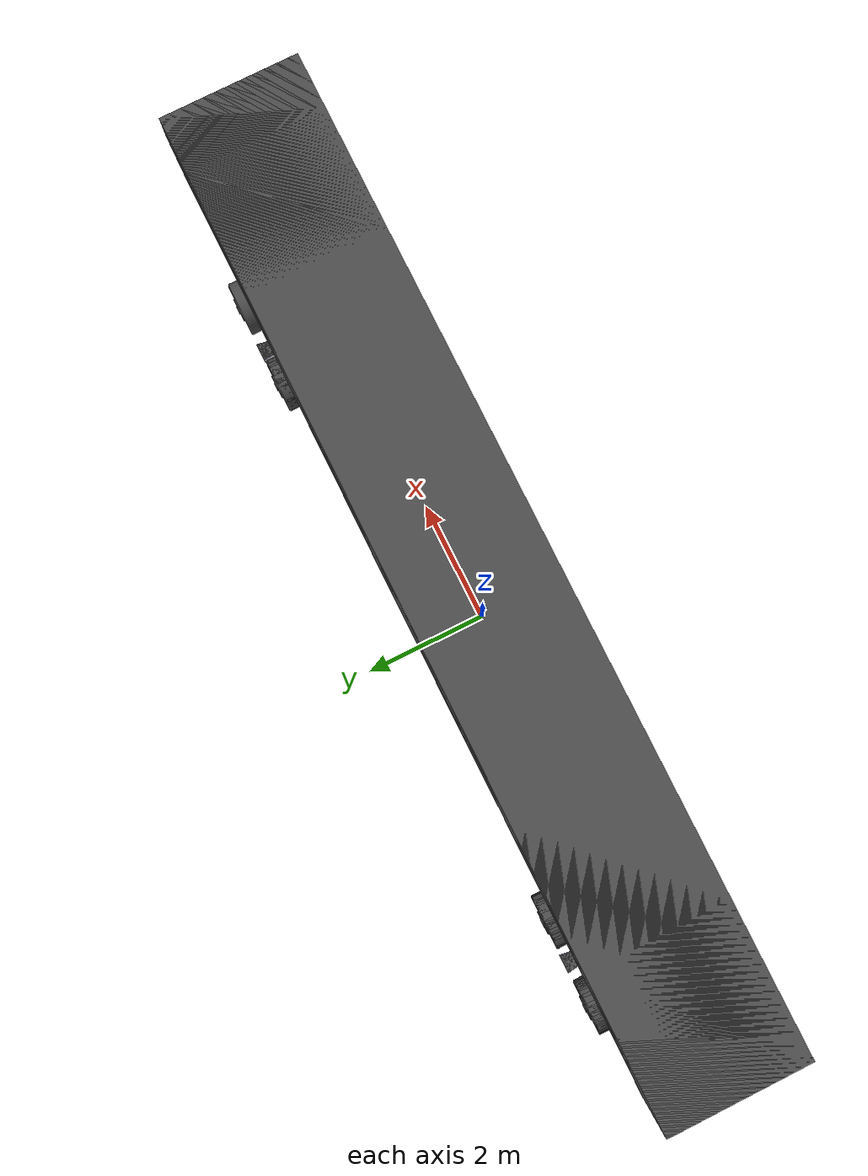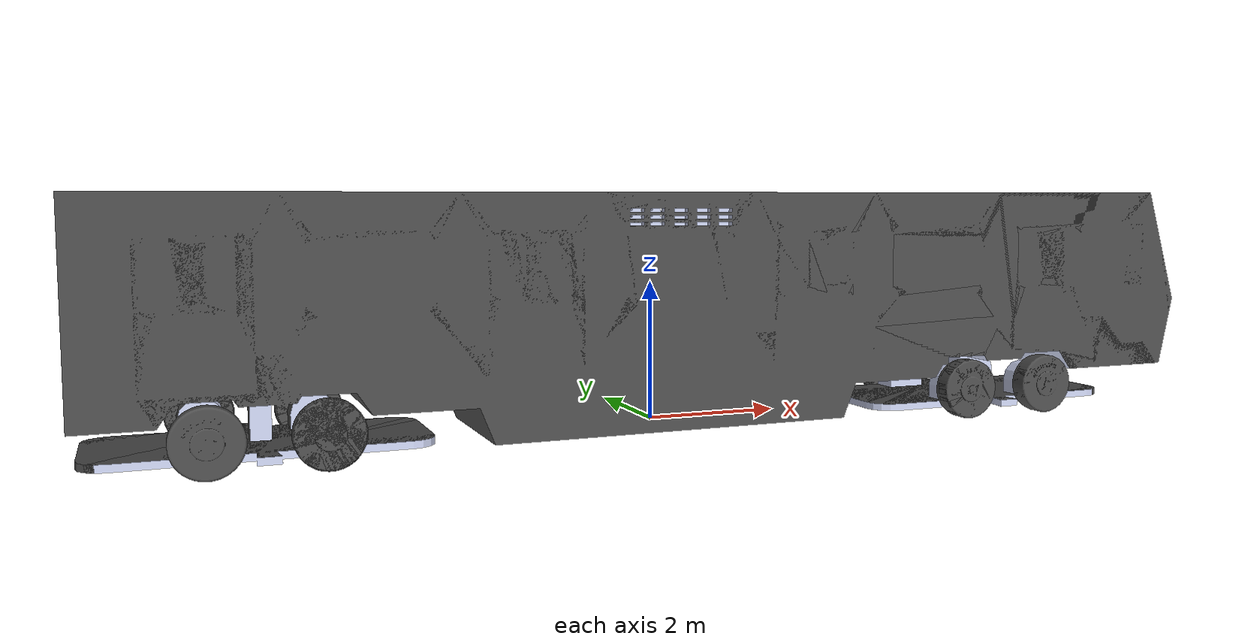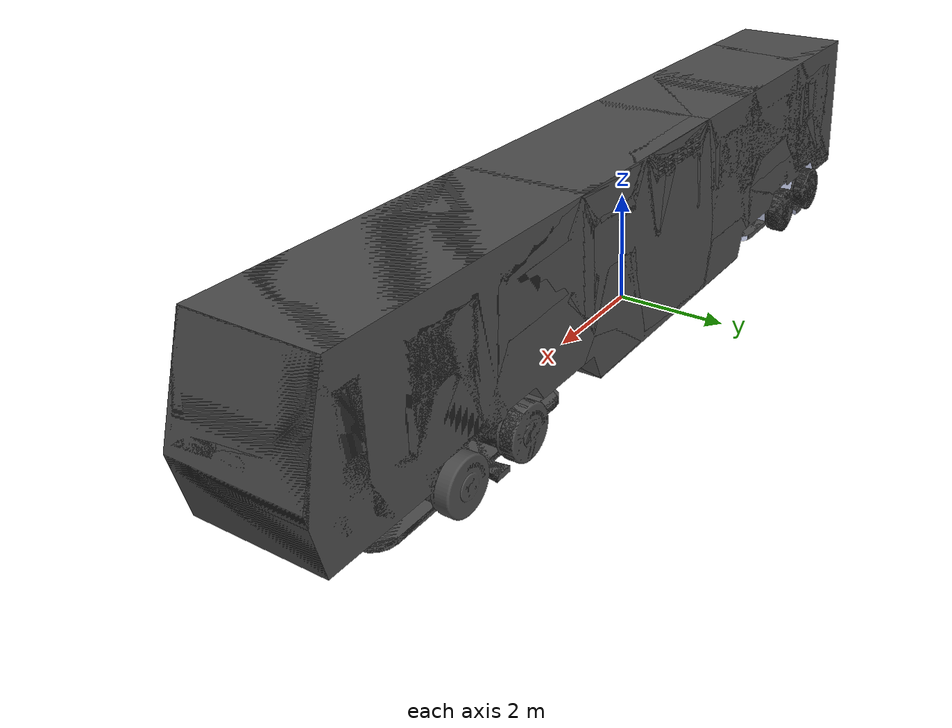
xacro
<?xml version="1.0"?>
<robot xmlns:xacro="http://www.ros.org/wiki/xacro" >

    <material name="red">
      <color rgba="0 0 1 1"/>
    </material>

    <link name="base_link">
    </link>

    <joint name="Chassis_joint" type="fixed">
        <parent link="base_link"/>
        <child link="chassis"/>
        <origin xyz= "0 0 0"/>
    </joint>

    <link name="chassis">
        <inertial>
         <origin
            xyz="0 0 0"
            rpy="0 0 0" />
         <mass
            value="30000" />
         <inertia
            ixx="39860"
            ixy="10.677"
            ixz="0"
            iyy="710000"
            iyz="58.767"
            izz="696000" />
        </inertial>
        <visual>
         <origin
            xyz="0 0 0"
            rpy="0 0 0" />
         <geometry>
            <mesh
            filename="file://$(find metrolidar)/description/meshes/base_link.dae" />
         </geometry>
         <material
            name="">
            <color
            rgba="0.79216 0.81961 0.93333 1" />
         </material>
        </visual>
        <collision>
         <origin
            xyz="0 0 0"
            rpy="0 0 0" />
         <geometry>
            <mesh
            filename="file://$(find metrolidar)/description/meshes/base_link.dae" />
         </geometry>
        </collision>
    </link>

    <joint name="Llanta1-1_joint" type="continuous">
        <parent link="base_link" />
        <child link="Llanta1-1" />
        <axis xyz="0 1 0" />
        <origin xyz="6.2355 1.1399 0.30167"
                rpy="0 0 0" />
    </joint>

    <link name="Llanta1-1">
        <inertial>
          <origin
            xyz="0 0 0"
            rpy="0 0 0" />
          <mass
            value="500" />
          <inertia
            ixx="30"
            ixy="-0.0030034"
            ixz="-0.0052717"
            iyy="30"
            iyz="0.0030911"
            izz="9" />
        </inertial>
        <visual>
          <origin
            xyz="0 0 0"
            rpy="0 0 0" />
          <geometry>
            <mesh
              filename="file://$(find metrolidar)/description/meshes/Llanta1-1.dae" />
          </geometry>
          <material
            name="">
            <color
              rgba="0.29804 0.29804 0.29804 1" />
          </material>
        </visual>
        <collision>
          <origin
            xyz="0 0 0"
            rpy="0 0 0" />
          <geometry>
            <mesh
              filename="file://$(find metrolidar)/description/meshes/Llanta1-1.dae" />
          </geometry>
        </collision>
    </link>

    <joint name="Llanta1-2_joint" type="continuous">
      <origin
        xyz="6.2355 -1.1101 0.30167"
        rpy="0 0 0" />
      <parent
        link="base_link" />
      <child
        link="Llanta1-2" />
      <axis
        xyz="0 1 0" />
    </joint>
    <link name="Llanta1-2">
     <inertial>
      <origin
        xyz="0 0 0"
        rpy="0 0 0" />
      <mass value="500" />
      <inertia
        ixx="30"
        ixy="0.0013621"
        ixz="0"
        iyy="30"
        iyz="0"
        izz="9" />
     </inertial>
     <visual>
      <origin
        xyz="0 0 0"
        rpy="0 0 0" />
      <geometry>
        <mesh
          filename="file://$(find metrolidar)/description/meshes/Llanta1-2.dae" />
      </geometry>
      <material
        name="">
       <color
          rgba="0.29804 0.29804 0.29804 1" />
      </material>
     </visual>
     <collision>
      <origin
        xyz="0 0 0"
        rpy="0 0 0" />
      <geometry>
        <mesh
          filename="file://$(find metrolidar)/description/meshes/Llanta1-2.dae" />
      </geometry>
     </collision>
    </link>

    <joint name="Llanta1-3_joint" type="continuous">
      <origin
        xyz="4.8055 1.1399 0.30167"
        rpy="0 0 0" />
      <parent
        link="base_link" />
      <child
        link="Llanta1-3" />
      <axis
        xyz="0 1 0" />
    </joint>
    <link name="Llanta1-3">
      <inertial>
        <origin
          xyz="0 0 0"
          rpy="0 0 0" />
        <mass
          value="500" />
        <inertia
          ixx="30"
          ixy="-0.0030034"
          ixz="-0.0052717"
          iyy="30"
          iyz="0.0030911"
          izz="9" />
      </inertial>
      <visual>
        <origin
          xyz="0 0 0"
          rpy="0 0 0" />
        <geometry>
          <mesh
            filename="file://$(find metrolidar)/description/meshes/Llanta1-3.dae" />
        </geometry>
        <material
          name="">
          <color
            rgba="0.29804 0.29804 0.29804 1" />
        </material>
      </visual>
      <collision>
        <origin
          xyz="0 0 0"
          rpy="0 0 0" />
        <geometry>
          <mesh
            filename="file://$(find metrolidar)/description/meshes/Llanta1-3.dae" />
        </geometry>
      </collision>
    </link>

    <link name="Llanta1-4">
      <inertial>
        <origin
          xyz="0 0 0"
          rpy="0 0 0" />
        <mass
          value="500" />
        <inertia
          ixx="30"
          ixy="0.0013621"
          ixz="-0.0032069"
          iyy="30"
          iyz="-0.004089"
          izz="9" />
      </inertial>
      <visual>
        <origin
          xyz="0 0 0"
          rpy="0 0 0" />
        <geometry>
          <mesh
            filename="file://$(find metrolidar)/description/meshes/Llanta1-4.dae" />
        </geometry>
        <material
          name="">
          <color
            rgba="0.29804 0.29804 0.29804 1" />
        </material>
      </visual>
      <collision>
        <origin
          xyz="0 0 0"
          rpy="0 0 0" />
        <geometry>
          <mesh
            filename="file://$(find metrolidar)/description/meshes/Llanta1-4.dae" />
        </geometry>
      </collision>
    </link>
    <joint name="Llanta1-4_joint" type="continuous">
      <origin
        xyz="4.8055 -1.1101 0.30167"
        rpy="0 0 0" />
      <parent
        link="base_link" />
      <child
        link="Llanta1-4" />
      <axis
        xyz="0 1 0" />
    </joint>

    <link name="Llanta2-1">
      <inertial>
        <origin
          xyz="0 0 0"
          rpy="0 0 0" />
        <mass
          value="500" />
        <inertia
          ixx="30"
          ixy="-0.0030034"
          ixz="-0.0052717"
          iyy="30"
          iyz="0.0030911"
          izz="9" />
      </inertial>
      <visual>
        <origin
          xyz="0 0 0"
          rpy="0 0 0" />
        <geometry>
          <mesh
            filename="file://$(find metrolidar)/description/meshes/Llanta2-1.dae" />
        </geometry>
        <material
          name="">
          <color
            rgba="0.29804 0.29804 0.29804 1" />
        </material>
      </visual>
      <collision>
        <origin
          xyz="0 0 0"
          rpy="0 0 0" />
        <geometry>
          <mesh
            filename="file://$(find metrolidar)/description/meshes/Llanta2-1.dae" />
        </geometry>
      </collision>
    </link>
    <joint name="Llanta2-1_joint" type="continuous">
      <origin
        xyz="-4.7145 1.1399 0.30167"
        rpy="0 0 0" />
      <parent
        link="base_link" />
      <child
        link="Llanta2-1" />
      <axis
        xyz="0 1 0" />
    </joint>

    <link name="Llanta2-2">
      <inertial>
        <origin
          xyz="0 0 0"
          rpy="0 0 0" />
        <mass
          value="500" />
        <inertia
          ixx="30"
          ixy="0.0013621"
          ixz="-0.0032069"
          iyy="30"
          iyz="-0.004089"
          izz="9" />
      </inertial>
      <visual>
        <origin
          xyz="0 0 0"
          rpy="0 0 0" />
        <geometry>
          <mesh
            filename="file://$(find metrolidar)/description/meshes/Llanta2-2.dae" />
        </geometry>
        <material
          name="">
          <color
            rgba="0.29804 0.29804 0.29804 1" />
        </material>
      </visual>
      <collision>
        <origin
          xyz="0 0 0"
          rpy="0 0 0" />
        <geometry>
          <mesh
            filename="file://$(find metrolidar)/description/meshes/Llanta2-2.dae" />
        </geometry>
      </collision>
    </link>
    <joint name="Llanta2-2_joint" type="continuous">
      <origin
        xyz="-4.7145 -1.1101 0.30167"
        rpy="0 0 0" />
      <parent
        link="base_link" />
      <child
        link="Llanta2-2" />
      <axis
        xyz="0 1 0" />
    </joint>

    <link name="Llanta2-3">
      <inertial>
        <origin
          xyz="0 0 0"
          rpy="0 0 0" />
        <mass
          value="500" />
        <inertia
          ixx="30"
          ixy="-0.0030034"
          ixz="-0.0052717"
          iyy="30"
          iyz="0.0030911"
          izz="9" />
      </inertial>
      <visual>
        <origin
          xyz="0 0 0"
          rpy="0 0 0" />
        <geometry>
          <mesh
            filename="file://$(find metrolidar)/description/meshes/Llanta2-3.dae" />
        </geometry>
        <material
          name="">
          <color
            rgba="0.29804 0.29804 0.29804 1" />
        </material>
      </visual>
      <collision>
        <origin
          xyz="0 0 0"
          rpy="0 0 0" />
        <geometry>
          <mesh
            filename="file://$(find metrolidar)/description/meshes/Llanta2-3.dae" />
        </geometry>
      </collision>
    </link>
    <joint name="Llanta2-3_joint" type="continuous">
      <origin
        xyz="-6.1445 1.1399 0.30167"
        rpy="0 0 0" />
      <parent
        link="base_link" />
      <child
        link="Llanta2-3" />
      <axis
        xyz="0 1 0" />
    </joint>

    <link name="Llanta2-4">
      <inertial>
        <origin
          xyz="0 0 0"
          rpy="0 0 0" />
        <mass
          value="500" />
        <inertia
          ixx="30"
          ixy="0"
          ixz="0"
          iyy="30"
          iyz="0"
          izz="9" />
      </inertial>
      <visual>
        <origin
          xyz="0 0 0"
          rpy="0 0 0" />
        <geometry>
          <mesh
            filename="file://$(find metrolidar)/description/meshes/Llanta2-4.dae" />
        </geometry>
        <material
          name="">
          <color
            rgba="0.29804 0.29804 0.29804 1" />
        </material>
      </visual>
      <collision>
        <origin
          xyz="0 0 0"
          rpy="0 0 0" />
        <geometry>
          <mesh
            filename="file://$(find metrolidar)/description/meshes/Llanta2-4.dae" />
        </geometry>
      </collision>
    </link>
    <joint name="Llanta2-4_joint" type="continuous">
      <origin
        xyz="-6.1445 -1.1101 0.30167"
        rpy="0 0 0" />
      <parent
        link="base_link" />
      <child
        link="Llanta2-4" />
      <axis
        xyz="0 1 0" />
    </joint>

</robot>
